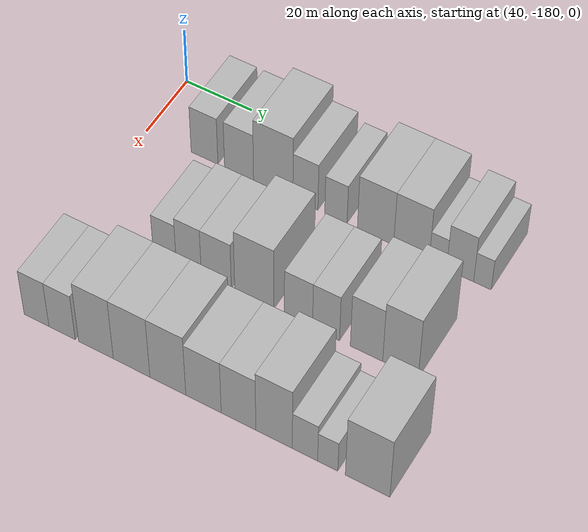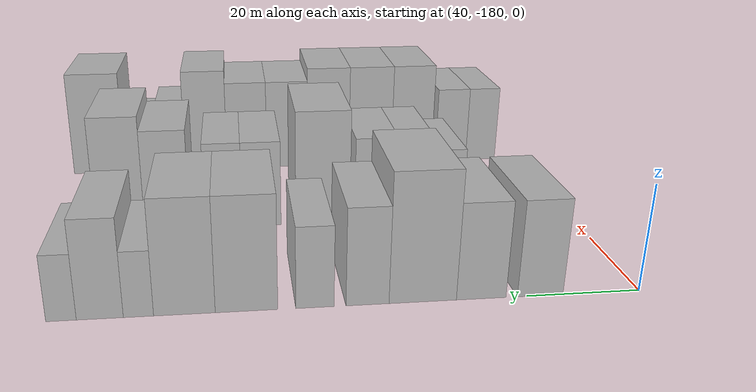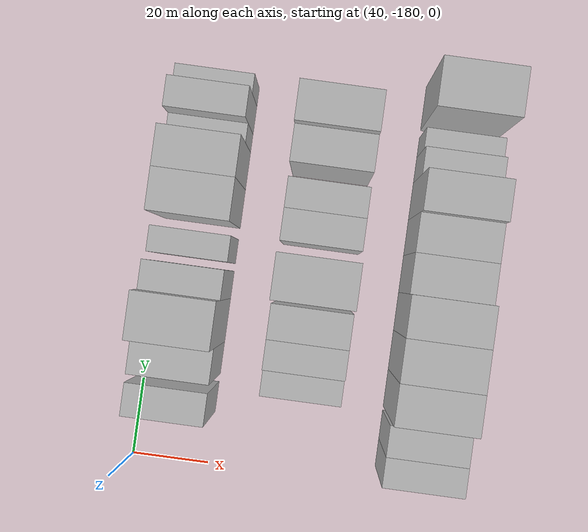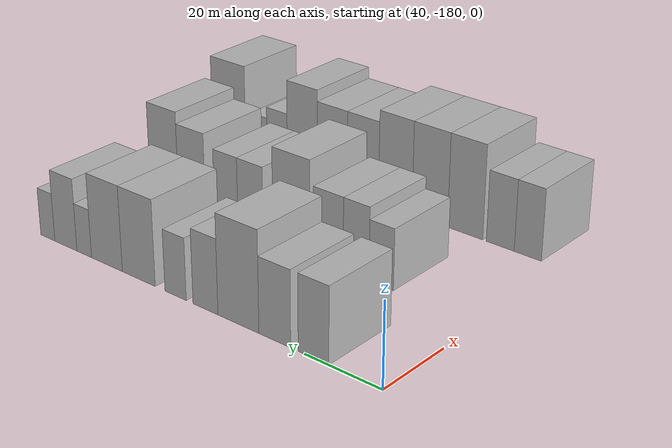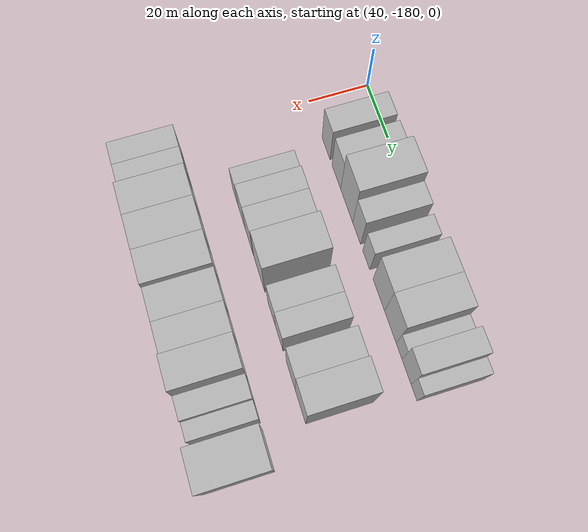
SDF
<sdf version="1.6">
 <world name="default">
  <model name="building_20">
   <static>1</static>
   <pose>50.0000 -162.3032 0 0.000000 0.000000 0.000000</pose>
   <link name="link">
    <pose>0 0 9.00 0 0 0</pose>
    <collision name="collision"><geometry><box><size>20.0000 8.0733 18.0000</size></box></geometry></collision>
    <visual name="visual">
     <cast_shadows>0</cast_shadows>
     <geometry><box><size>20.0000 8.0733 18.0000</size></box></geometry>
     <material>
      <script>
       <uri>model://HANNAS_wall/materials/scripts</uri>
       <uri>model://HANNAS_wall/materials/textures</uri>
       <name>vrc/HANNAS_wall</name>
      </script>
     </material>
    </visual>
   </link>
  </model>
  <model name="building_21">
   <static>1</static>
   <pose>50.0000 -151.9376 0 0.000000 0.000000 0.000000</pose>
   <link name="link">
    <pose>0 0 9.00 0 0 0</pose>
    <collision name="collision"><geometry><box><size>20.0000 8.6579 18.0000</size></box></geometry></collision>
    <visual name="visual">
     <cast_shadows>0</cast_shadows>
     <geometry><box><size>20.0000 8.6579 18.0000</size></box></geometry>
     <material>
      <script>
       <uri>model://HANNAS_wall/materials/scripts</uri>
       <uri>model://HANNAS_wall/materials/textures</uri>
       <name>vrc/HANNAS_wall</name>
      </script>
     </material>
    </visual>
   </link>
  </model>
  <model name="building_22">
   <static>1</static>
   <pose>50.0000 -141.8057 0 0.000000 0.000000 0.000000</pose>
   <link name="link">
    <pose>0 0 12.00 0 0 0</pose>
    <collision name="collision"><geometry><box><size>20.0000 11.6058 24.0000</size></box></geometry></collision>
    <visual name="visual">
     <cast_shadows>0</cast_shadows>
     <geometry><box><size>20.0000 11.6058 24.0000</size></box></geometry>
     <material>
      <script>
       <uri>model://HANNAS_wall/materials/scripts</uri>
       <uri>model://HANNAS_wall/materials/textures</uri>
       <name>vrc/HANNAS_wall</name>
      </script>
     </material>
    </visual>
   </link>
  </model>
  <model name="building_23">
   <static>1</static>
   <pose>50.0000 -132.3455 0 0.000000 0.000000 0.000000</pose>
   <link name="link">
    <pose>0 0 9.00 0 0 0</pose>
    <collision name="collision"><geometry><box><size>20.0000 7.3147 18.0000</size></box></geometry></collision>
    <visual name="visual">
     <cast_shadows>0</cast_shadows>
     <geometry><box><size>20.0000 7.3147 18.0000</size></box></geometry>
     <material>
      <script>
       <uri>model://HANNAS_wall/materials/scripts</uri>
       <uri>model://HANNAS_wall/materials/textures</uri>
       <name>vrc/HANNAS_wall</name>
      </script>
     </material>
    </visual>
   </link>
  </model>
  <model name="building_24">
   <static>1</static>
   <pose>50.0000 -123.4664 0 0.000000 0.000000 0.000000</pose>
   <link name="link">
    <pose>0 0 7.50 0 0 0</pose>
    <collision name="collision"><geometry><box><size>20.0000 6.4434 15.0000</size></box></geometry></collision>
    <visual name="visual">
     <cast_shadows>0</cast_shadows>
     <geometry><box><size>20.0000 6.4434 15.0000</size></box></geometry>
     <material>
      <script>
       <uri>model://HANNAS_wall/materials/scripts</uri>
       <uri>model://HANNAS_wall/materials/textures</uri>
       <name>vrc/HANNAS_wall</name>
      </script>
     </material>
    </visual>
   </link>
  </model>
  <model name="building_25">
   <static>1</static>
   <pose>50.0000 -112.0705 0 0.000000 0.000000 0.000000</pose>
   <link name="link">
    <pose>0 0 10.50 0 0 0</pose>
    <collision name="collision"><geometry><box><size>20.0000 10.3483 21.0000</size></box></geometry></collision>
    <visual name="visual">
     <cast_shadows>0</cast_shadows>
     <geometry><box><size>20.0000 10.3483 21.0000</size></box></geometry>
     <material>
      <script>
       <uri>model://HANNAS_wall/materials/scripts</uri>
       <uri>model://HANNAS_wall/materials/textures</uri>
       <name>vrc/HANNAS_wall</name>
      </script>
     </material>
    </visual>
   </link>
  </model>
  <model name="building_26">
   <static>1</static>
   <pose>50.0000 -101.8684 0 0.000000 0.000000 0.000000</pose>
   <link name="link">
    <pose>0 0 10.50 0 0 0</pose>
    <collision name="collision"><geometry><box><size>20.0000 10.0559 21.0000</size></box></geometry></collision>
    <visual name="visual">
     <cast_shadows>0</cast_shadows>
     <geometry><box><size>20.0000 10.0559 21.0000</size></box></geometry>
     <material>
      <script>
       <uri>model://HANNAS_wall/materials/scripts</uri>
       <uri>model://HANNAS_wall/materials/textures</uri>
       <name>vrc/HANNAS_wall</name>
      </script>
     </material>
    </visual>
   </link>
  </model>
  <model name="building_27">
   <static>1</static>
   <pose>50.0000 -94.3992 0 0.000000 0.000000 0.000000</pose>
   <link name="link">
    <pose>0 0 6.00 0 0 0</pose>
    <collision name="collision"><geometry><box><size>20.0000 4.8827 12.0000</size></box></geometry></collision>
    <visual name="visual">
     <cast_shadows>0</cast_shadows>
     <geometry><box><size>20.0000 4.8827 12.0000</size></box></geometry>
     <material>
      <script>
       <uri>model://HANNAS_wall/materials/scripts</uri>
       <uri>model://HANNAS_wall/materials/textures</uri>
       <name>vrc/HANNAS_wall</name>
      </script>
     </material>
    </visual>
   </link>
  </model>
  <model name="building_28">
   <static>1</static>
   <pose>50.0000 -88.1962 0 0.000000 0.000000 0.000000</pose>
   <link name="link">
    <pose>0 0 9.00 0 0 0</pose>
    <collision name="collision"><geometry><box><size>20.0000 7.5232 18.0000</size></box></geometry></collision>
    <visual name="visual">
     <cast_shadows>0</cast_shadows>
     <geometry><box><size>20.0000 7.5232 18.0000</size></box></geometry>
     <material>
      <script>
       <uri>model://HANNAS_wall/materials/scripts</uri>
       <uri>model://HANNAS_wall/materials/textures</uri>
       <name>vrc/HANNAS_wall</name>
      </script>
     </material>
    </visual>
   </link>
  </model>
  <model name="building_29">
   <static>1</static>
   <pose>50.0000 -82.0063 0 0.000000 0.000000 0.000000</pose>
   <link name="link">
    <pose>0 0 6.00 0 0 0</pose>
    <collision name="collision"><geometry><box><size>20.0000 4.8566 12.0000</size></box></geometry></collision>
    <visual name="visual">
     <cast_shadows>0</cast_shadows>
     <geometry><box><size>20.0000 4.8566 12.0000</size></box></geometry>
     <material>
      <script>
       <uri>model://HANNAS_wall/materials/scripts</uri>
       <uri>model://HANNAS_wall/materials/textures</uri>
       <name>vrc/HANNAS_wall</name>
      </script>
     </material>
    </visual>
   </link>
  </model>
  <model name="building_93">
   <static>1</static>
   <pose>82.0000 -154.3610 0 0.000000 0.000000 0.000000</pose>
   <link name="link">
    <pose>0 0 7.50 0 0 0</pose>
    <collision name="collision"><geometry><box><size>20.0000 6.7624 15.0000</size></box></geometry></collision>
    <visual name="visual">
     <cast_shadows>0</cast_shadows>
     <geometry><box><size>20.0000 6.7624 15.0000</size></box></geometry>
     <material>
      <script>
       <uri>model://HANNAS_wall/materials/scripts</uri>
       <uri>model://HANNAS_wall/materials/textures</uri>
       <name>vrc/HANNAS_wall</name>
      </script>
     </material>
    </visual>
   </link>
  </model>
  <model name="building_94">
   <static>1</static>
   <pose>82.0000 -147.3197 0 0.000000 0.000000 0.000000</pose>
   <link name="link">
    <pose>0 0 9.00 0 0 0</pose>
    <collision name="collision"><geometry><box><size>20.0000 7.3201 18.0000</size></box></geometry></collision>
    <visual name="visual">
     <cast_shadows>0</cast_shadows>
     <geometry><box><size>20.0000 7.3201 18.0000</size></box></geometry>
     <material>
      <script>
       <uri>model://HANNAS_wall/materials/scripts</uri>
       <uri>model://HANNAS_wall/materials/textures</uri>
       <name>vrc/HANNAS_wall</name>
      </script>
     </material>
    </visual>
   </link>
  </model>
  <model name="building_95">
   <static>1</static>
   <pose>82.0000 -139.3300 0 0.000000 0.000000 0.000000</pose>
   <link name="link">
    <pose>0 0 9.00 0 0 0</pose>
    <collision name="collision"><geometry><box><size>20.0000 8.6593 18.0000</size></box></geometry></collision>
    <visual name="visual">
     <cast_shadows>0</cast_shadows>
     <geometry><box><size>20.0000 8.6593 18.0000</size></box></geometry>
     <material>
      <script>
       <uri>model://HANNAS_wall/materials/scripts</uri>
       <uri>model://HANNAS_wall/materials/textures</uri>
       <name>vrc/HANNAS_wall</name>
      </script>
     </material>
    </visual>
   </link>
  </model>
  <model name="building_96">
   <static>1</static>
   <pose>82.0000 -128.4427 0 0.000000 0.000000 0.000000</pose>
   <link name="link">
    <pose>0 0 12.00 0 0 0</pose>
    <collision name="collision"><geometry><box><size>20.0000 11.1153 24.0000</size></box></geometry></collision>
    <visual name="visual">
     <cast_shadows>0</cast_shadows>
     <geometry><box><size>20.0000 11.1153 24.0000</size></box></geometry>
     <material>
      <script>
       <uri>model://HANNAS_wall/materials/scripts</uri>
       <uri>model://HANNAS_wall/materials/textures</uri>
       <name>vrc/HANNAS_wall</name>
      </script>
     </material>
    </visual>
   </link>
  </model>
  <model name="building_97">
   <static>1</static>
   <pose>82.0000 -115.9267 0 0.000000 0.000000 0.000000</pose>
   <link name="link">
    <pose>0 0 9.00 0 0 0</pose>
    <collision name="collision"><geometry><box><size>20.0000 7.9168 18.0000</size></box></geometry></collision>
    <visual name="visual">
     <cast_shadows>0</cast_shadows>
     <geometry><box><size>20.0000 7.9168 18.0000</size></box></geometry>
     <material>
      <script>
       <uri>model://HANNAS_wall/materials/scripts</uri>
       <uri>model://HANNAS_wall/materials/textures</uri>
       <name>vrc/HANNAS_wall</name>
      </script>
     </material>
    </visual>
   </link>
  </model>
  <model name="building_98">
   <static>1</static>
   <pose>82.0000 -108.2149 0 0.000000 0.000000 0.000000</pose>
   <link name="link">
    <pose>0 0 9.00 0 0 0</pose>
    <collision name="collision"><geometry><box><size>20.0000 7.5067 18.0000</size></box></geometry></collision>
    <visual name="visual">
     <cast_shadows>0</cast_shadows>
     <geometry><box><size>20.0000 7.5067 18.0000</size></box></geometry>
     <material>
      <script>
       <uri>model://HANNAS_wall/materials/scripts</uri>
       <uri>model://HANNAS_wall/materials/textures</uri>
       <name>vrc/HANNAS_wall</name>
      </script>
     </material>
    </visual>
   </link>
  </model>
  <model name="building_99">
   <static>1</static>
   <pose>82.0000 -97.0016 0 0.000000 0.000000 0.000000</pose>
   <link name="link">
    <pose>0 0 10.50 0 0 0</pose>
    <collision name="collision"><geometry><box><size>20.0000 8.9200 21.0000</size></box></geometry></collision>
    <visual name="visual">
     <cast_shadows>0</cast_shadows>
     <geometry><box><size>20.0000 8.9200 21.0000</size></box></geometry>
     <material>
      <script>
       <uri>model://HANNAS_wall/materials/scripts</uri>
       <uri>model://HANNAS_wall/materials/textures</uri>
       <name>vrc/HANNAS_wall</name>
      </script>
     </material>
    </visual>
   </link>
  </model>
  <model name="building_100">
   <static>1</static>
   <pose>82.0000 -87.7204 0 0.000000 0.000000 0.000000</pose>
   <link name="link">
    <pose>0 0 12.00 0 0 0</pose>
    <collision name="collision"><geometry><box><size>20.0000 9.6425 24.0000</size></box></geometry></collision>
    <visual name="visual">
     <cast_shadows>0</cast_shadows>
     <geometry><box><size>20.0000 9.6425 24.0000</size></box></geometry>
     <material>
      <script>
       <uri>model://HANNAS_wall/materials/scripts</uri>
       <uri>model://HANNAS_wall/materials/textures</uri>
       <name>vrc/HANNAS_wall</name>
      </script>
     </material>
    </visual>
   </link>
  </model>
  <model name="building_170">
   <static>1</static>
   <pose>114.0000 -171.1345 0 0.000000 0.000000 0.000000</pose>
   <link name="link">
    <pose>0 0 9.00 0 0 0</pose>
    <collision name="collision"><geometry><box><size>20.0000 7.2842 18.0000</size></box></geometry></collision>
    <visual name="visual">
     <cast_shadows>0</cast_shadows>
     <geometry><box><size>20.0000 7.2842 18.0000</size></box></geometry>
     <material>
      <script>
       <uri>model://HANNAS_wall/materials/scripts</uri>
       <uri>model://HANNAS_wall/materials/textures</uri>
       <name>vrc/HANNAS_wall</name>
      </script>
     </material>
    </visual>
   </link>
  </model>
  <model name="building_171">
   <static>1</static>
   <pose>114.0000 -163.6766 0 0.000000 0.000000 0.000000</pose>
   <link name="link">
    <pose>0 0 9.00 0 0 0</pose>
    <collision name="collision"><geometry><box><size>20.0000 7.6317 18.0000</size></box></geometry></collision>
    <visual name="visual">
     <cast_shadows>0</cast_shadows>
     <geometry><box><size>20.0000 7.6317 18.0000</size></box></geometry>
     <material>
      <script>
       <uri>model://HANNAS_wall/materials/scripts</uri>
       <uri>model://HANNAS_wall/materials/textures</uri>
       <name>vrc/HANNAS_wall</name>
      </script>
     </material>
    </visual>
   </link>
  </model>
  <model name="building_172">
   <static>1</static>
   <pose>114.0000 -153.8746 0 0.000000 0.000000 0.000000</pose>
   <link name="link">
    <pose>0 0 12.00 0 0 0</pose>
    <collision name="collision"><geometry><box><size>20.0000 9.9723 24.0000</size></box></geometry></collision>
    <visual name="visual">
     <cast_shadows>0</cast_shadows>
     <geometry><box><size>20.0000 9.9723 24.0000</size></box></geometry>
     <material>
      <script>
       <uri>model://HANNAS_wall/materials/scripts</uri>
       <uri>model://HANNAS_wall/materials/textures</uri>
       <name>vrc/HANNAS_wall</name>
      </script>
     </material>
    </visual>
   </link>
  </model>
  <model name="building_173">
   <static>1</static>
   <pose>114.0000 -143.6746 0 0.000000 0.000000 0.000000</pose>
   <link name="link">
    <pose>0 0 12.00 0 0 0</pose>
    <collision name="collision"><geometry><box><size>20.0000 10.4278 24.0000</size></box></geometry></collision>
    <visual name="visual">
     <cast_shadows>0</cast_shadows>
     <geometry><box><size>20.0000 10.4278 24.0000</size></box></geometry>
     <material>
      <script>
       <uri>model://HANNAS_wall/materials/scripts</uri>
       <uri>model://HANNAS_wall/materials/textures</uri>
       <name>vrc/HANNAS_wall</name>
      </script>
     </material>
    </visual>
   </link>
  </model>
  <model name="building_174">
   <static>1</static>
   <pose>114.0000 -133.4131 0 0.000000 0.000000 0.000000</pose>
   <link name="link">
    <pose>0 0 12.00 0 0 0</pose>
    <collision name="collision"><geometry><box><size>20.0000 10.0951 24.0000</size></box></geometry></collision>
    <visual name="visual">
     <cast_shadows>0</cast_shadows>
     <geometry><box><size>20.0000 10.0951 24.0000</size></box></geometry>
     <material>
      <script>
       <uri>model://HANNAS_wall/materials/scripts</uri>
       <uri>model://HANNAS_wall/materials/textures</uri>
       <name>vrc/HANNAS_wall</name>
      </script>
     </material>
    </visual>
   </link>
  </model>
  <model name="building_175">
   <static>1</static>
   <pose>114.0000 -123.4525 0 0.000000 0.000000 0.000000</pose>
   <link name="link">
    <pose>0 0 10.50 0 0 0</pose>
    <collision name="collision"><geometry><box><size>20.0000 9.8262 21.0000</size></box></geometry></collision>
    <visual name="visual">
     <cast_shadows>0</cast_shadows>
     <geometry><box><size>20.0000 9.8262 21.0000</size></box></geometry>
     <material>
      <script>
       <uri>model://HANNAS_wall/materials/scripts</uri>
       <uri>model://HANNAS_wall/materials/textures</uri>
       <name>vrc/HANNAS_wall</name>
      </script>
     </material>
    </visual>
   </link>
  </model>
  <model name="building_176">
   <static>1</static>
   <pose>114.0000 -113.7834 0 0.000000 0.000000 0.000000</pose>
   <link name="link">
    <pose>0 0 10.50 0 0 0</pose>
    <collision name="collision"><geometry><box><size>20.0000 9.5119 21.0000</size></box></geometry></collision>
    <visual name="visual">
     <cast_shadows>0</cast_shadows>
     <geometry><box><size>20.0000 9.5119 21.0000</size></box></geometry>
     <material>
      <script>
       <uri>model://HANNAS_wall/materials/scripts</uri>
       <uri>model://HANNAS_wall/materials/textures</uri>
       <name>vrc/HANNAS_wall</name>
      </script>
     </material>
    </visual>
   </link>
  </model>
  <model name="building_177">
   <static>1</static>
   <pose>114.0000 -104.0914 0 0.000000 0.000000 0.000000</pose>
   <link name="link">
    <pose>0 0 12.00 0 0 0</pose>
    <collision name="collision"><geometry><box><size>20.0000 9.8721 24.0000</size></box></geometry></collision>
    <visual name="visual">
     <cast_shadows>0</cast_shadows>
     <geometry><box><size>20.0000 9.8721 24.0000</size></box></geometry>
     <material>
      <script>
       <uri>model://HANNAS_wall/materials/scripts</uri>
       <uri>model://HANNAS_wall/materials/textures</uri>
       <name>vrc/HANNAS_wall</name>
      </script>
     </material>
    </visual>
   </link>
  </model>
  <model name="building_178">
   <static>1</static>
   <pose>114.0000 -95.7328 0 0.000000 0.000000 0.000000</pose>
   <link name="link">
    <pose>0 0 7.50 0 0 0</pose>
    <collision name="collision"><geometry><box><size>20.0000 6.8453 15.0000</size></box></geometry></collision>
    <visual name="visual">
     <cast_shadows>0</cast_shadows>
     <geometry><box><size>20.0000 6.8453 15.0000</size></box></geometry>
     <material>
      <script>
       <uri>model://HANNAS_wall/materials/scripts</uri>
       <uri>model://HANNAS_wall/materials/textures</uri>
       <name>vrc/HANNAS_wall</name>
      </script>
     </material>
    </visual>
   </link>
  </model>
  <model name="building_179">
   <static>1</static>
   <pose>114.0000 -89.6214 0 0.000000 0.000000 0.000000</pose>
   <link name="link">
    <pose>0 0 6.00 0 0 0</pose>
    <collision name="collision"><geometry><box><size>20.0000 5.3775 12.0000</size></box></geometry></collision>
    <visual name="visual">
     <cast_shadows>0</cast_shadows>
     <geometry><box><size>20.0000 5.3775 12.0000</size></box></geometry>
     <material>
      <script>
       <uri>model://HANNAS_wall/materials/scripts</uri>
       <uri>model://HANNAS_wall/materials/textures</uri>
       <name>vrc/HANNAS_wall</name>
      </script>
     </material>
    </visual>
   </link>
  </model>
  <model name="building_180">
   <static>1</static>
   <pose>114.0000 -79.0637 0 0.000000 0.000000 0.000000</pose>
   <link name="link">
    <pose>0 0 12.00 0 0 0</pose>
    <collision name="collision"><geometry><box><size>20.0000 11.7379 24.0000</size></box></geometry></collision>
    <visual name="visual">
     <cast_shadows>0</cast_shadows>
     <geometry><box><size>20.0000 11.7379 24.0000</size></box></geometry>
     <material>
      <script>
       <uri>model://HANNAS_wall/materials/scripts</uri>
       <uri>model://HANNAS_wall/materials/textures</uri>
       <name>vrc/HANNAS_wall</name>
      </script>
     </material>
    </visual>
   </link>
  </model>
 </world>
</sdf>
